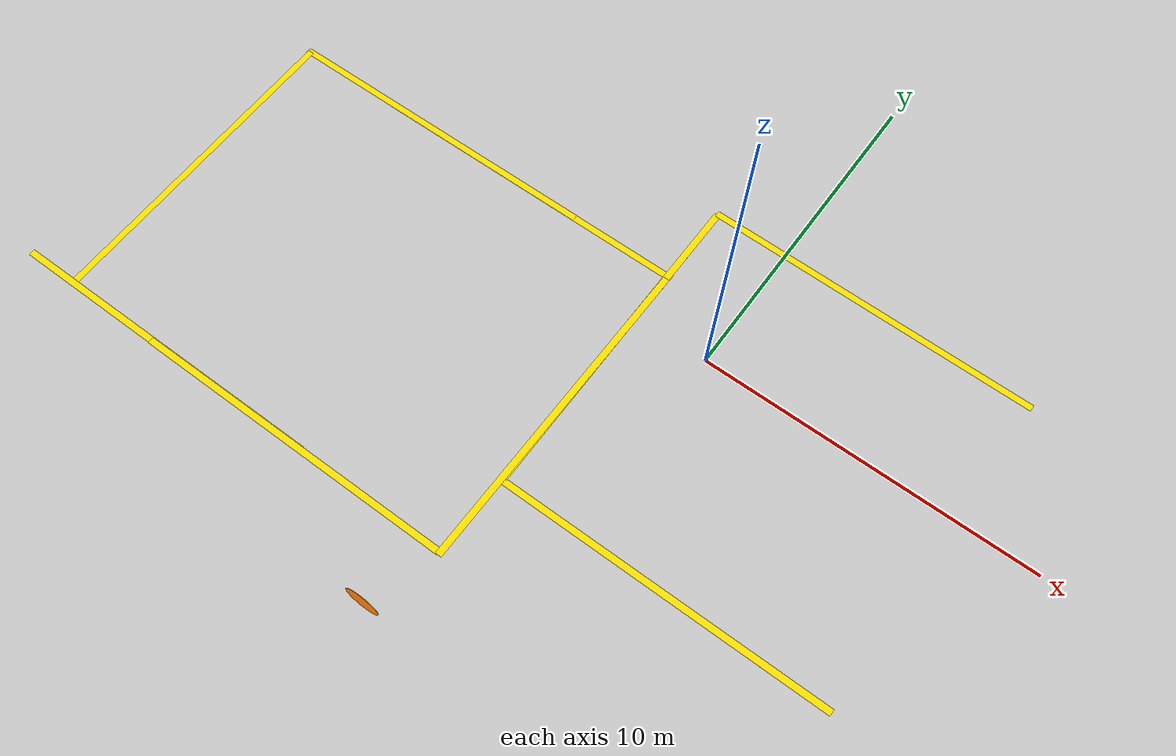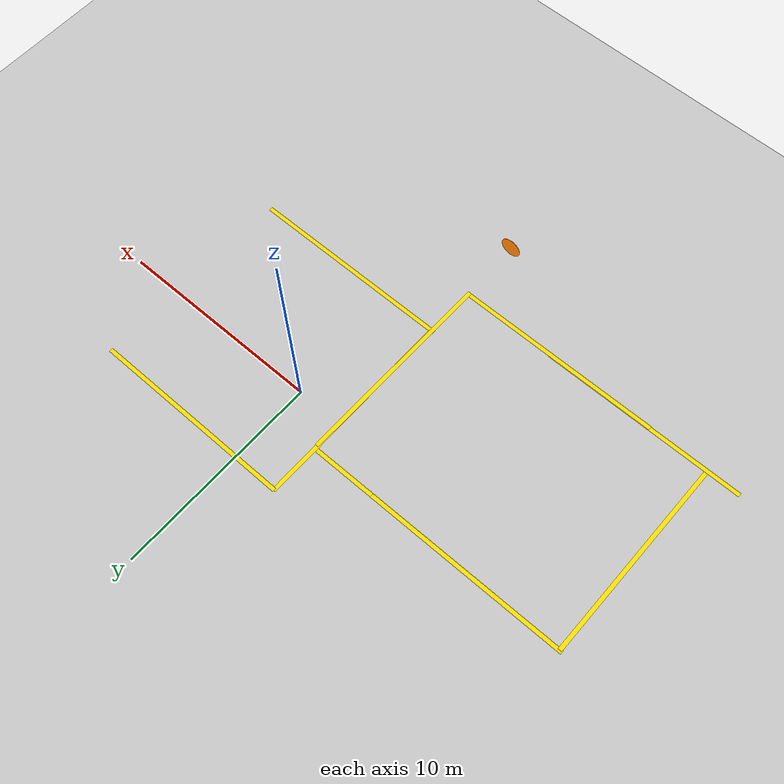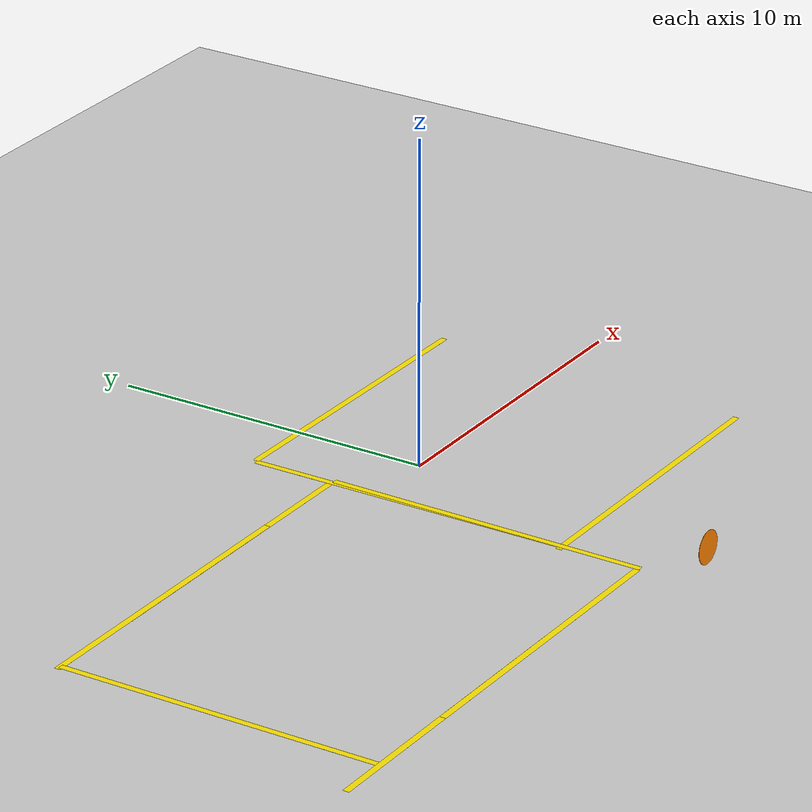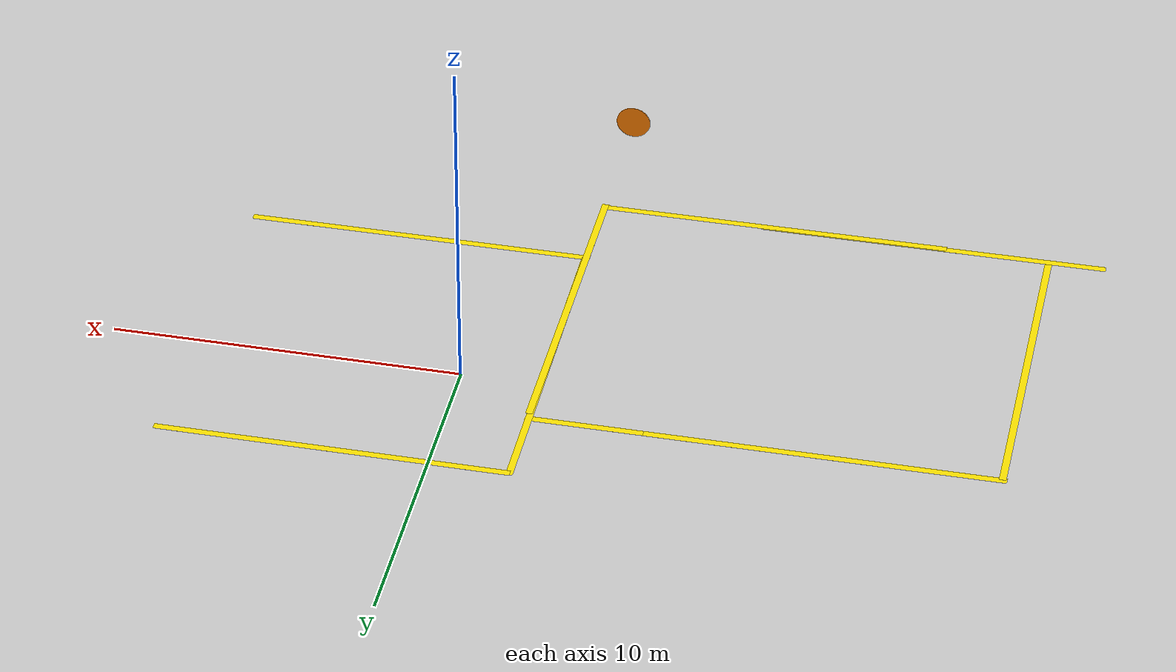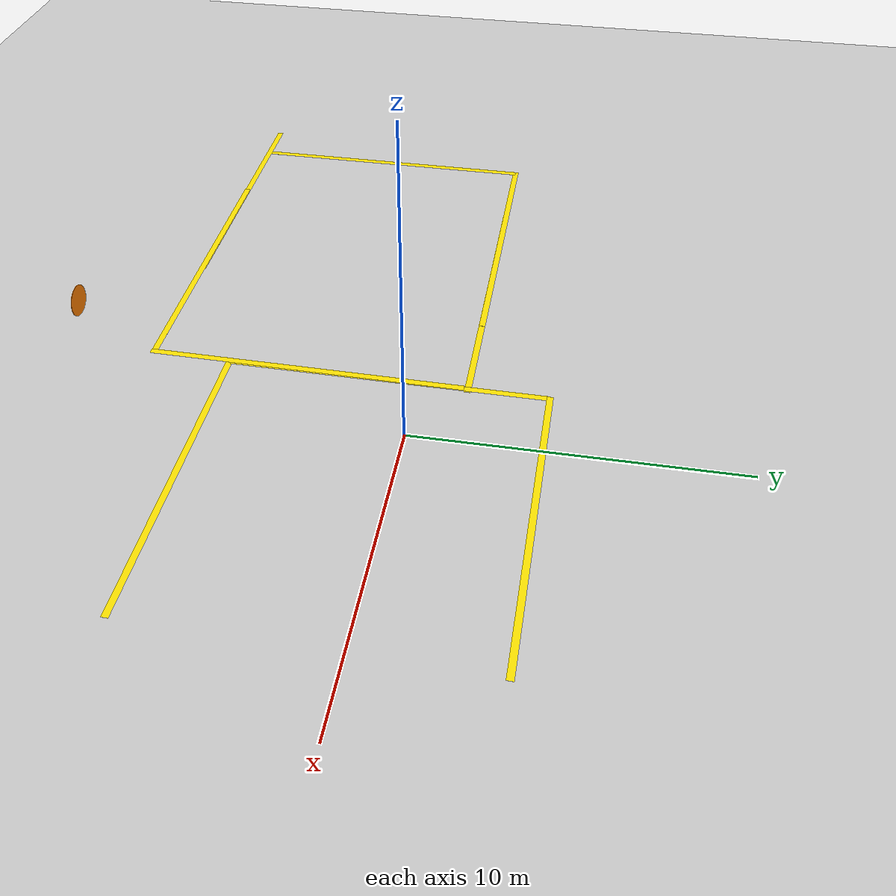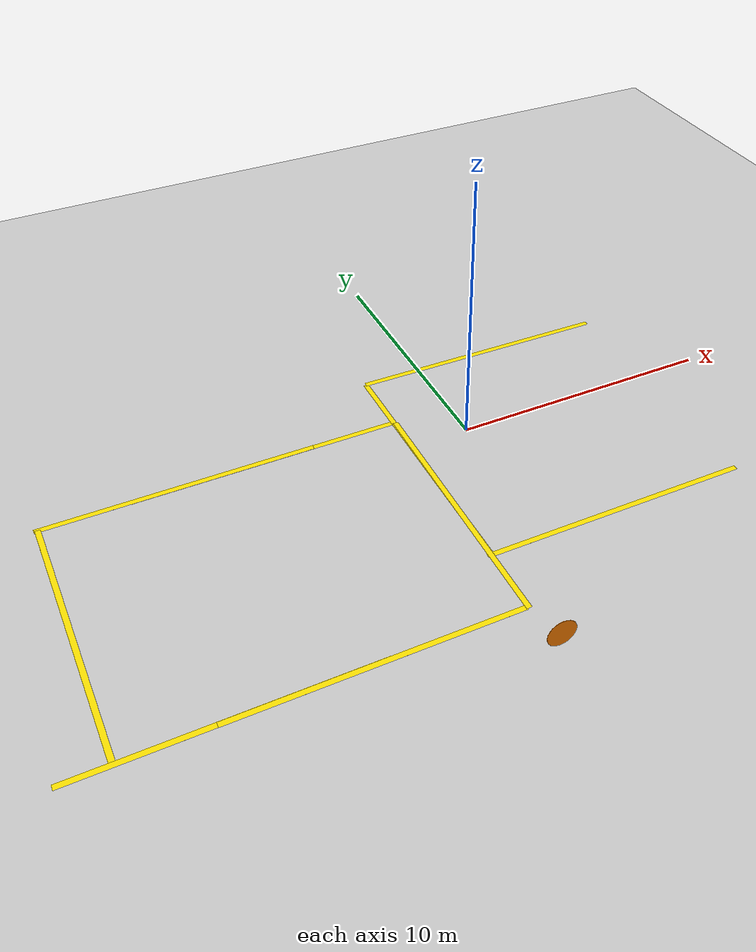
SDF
<sdf version="1.9">
 <world name="empty">
  <physics name="1ms" type="ignored">
   <max_step_size>0.001</max_step_size>
   <real_time_factor>1</real_time_factor>
   <real_time_update_rate>1000</real_time_update_rate>
  </physics>
  <plugin name="gz::sim::systems::Physics" filename="ignition-gazebo-physics-system"/>
  <plugin name="gz::sim::systems::UserCommands" filename="ignition-gazebo-user-commands-system"/>
  <plugin name="gz::sim::systems::SceneBroadcaster" filename="ignition-gazebo-scene-broadcaster-system"/>
  <plugin name="gz::sim::systems::Contact" filename="ignition-gazebo-contact-system"/>
  <gravity>0 0 -9.8</gravity>
  <magnetic_field>6e-06 2.3e-05 -4.2e-05</magnetic_field>
  <atmosphere type="adiabatic"/>
  <scene><ambient>0.4 0.4 0.4 1</ambient><background>0.7 0.7 0.7 1</background><shadows>true</shadows></scene>
  <model name="ground_plane">
   <static>true</static>
   <link name="link">
    <collision name="collision">
     <geometry><plane><normal>0 0 1</normal><size>100 100</size></plane></geometry>
    </collision>
    <visual name="visual">
     <geometry><plane><normal>0 0 1</normal><size>100 100</size></plane></geometry>
     <material>
      <ambient>0.8 0.8 0.8 1</ambient>
      <diffuse>0.8 0.8 0.8 1</diffuse>
      <specular>0.8 0.8 0.8 1</specular>
     </material>
    </visual>
    <inertial>
     <mass>1</mass>
     <inertia><ixx>1</ixx><ixy>0</ixy><ixz>0</ixz><iyy>1</iyy><iyz>0</iyz><izz>1</izz></inertia>
    </inertial>
   </link>
  </model>
  <model name="cylinder">
   <pose>-2.71414 -10.86 1.5 1.57 -0 0</pose>
   <link name="cylinder_link">
    <inertial>
     <inertia>
      <ixx>0.014579999999999999</ixx>
      <ixy>0</ixy>
      <ixz>0</ixz>
      <iyy>0.014579999999999999</iyy>
      <iyz>0</iyz>
      <izz>0.012500000000000001</izz>
     </inertia>
     <mass>10</mass>
    </inertial>
    <collision name="cylinder_collision">
     <geometry><cylinder><radius>0.5</radius><length>0.01</length></cylinder></geometry>
    </collision>
    <visual name="cylinder_visual">
     <geometry><cylinder><radius>0.5</radius><length>0.01</length></cylinder></geometry>
     <material><ambient>0.2 0.1 0 1</ambient><diffuse>1 0.5 0 1</diffuse><specular>1 1 1 1</specular></material>
    </visual>
   </link>
   <static>true</static>
  </model>
  <model name="line">
   <link name="link">
    <visual name="visual">
     <geometry><mesh><uri>file:///tecdron_ws/src/robot_gazebo/models/Line/line.dae</uri></mesh></geometry>
    </visual>
    <collision name="collision">
     <geometry><plane><normal>0 0 1</normal><size>0.1 0.1</size></plane></geometry>
    </collision>
    <inertial>
     <mass>1</mass>
     <inertia><ixx>1</ixx><ixy>0</ixy><ixz>0</ixz><iyy>1</iyy><iyz>0</iyz><izz>1</izz></inertia>
    </inertial>
   </link>
   <pose>2.70858 3.9935 0.050472 -0.00321 0.005039 -0.006178</pose>
   <static>true</static>
  </model>
  <model name="line_1">
   <link name="link">
    <visual name="visual">
     <geometry><mesh><uri>file:///tecdron_ws/src/robot_gazebo/models/Line/line.dae</uri></mesh></geometry>
    </visual>
    <collision name="collision">
     <geometry><plane><normal>0 0 1</normal><size>0.1 0.1</size></plane></geometry>
    </collision>
    <inertial>
     <mass>1</mass>
     <inertia><ixx>1</ixx><ixy>0</ixy><ixz>0</ixz><iyy>1</iyy><iyz>0</iyz><izz>1</izz></inertia>
    </inertial>
   </link>
   <pose>-2.27891 -0.959668 0.040963 -1e-06 -0.003195 -1.57361</pose>
   <static>true</static>
  </model>
  <model name="line_0">
   <link name="link">
    <visual name="visual">
     <geometry><mesh><uri>file:///tecdron_ws/src/robot_gazebo/models/Line/line.dae</uri></mesh></geometry>
    </visual>
    <collision name="collision">
     <geometry><plane><normal>0 0 1</normal><size>0.1 0.1</size></plane></geometry>
    </collision>
    <inertial>
     <mass>1</mass>
     <inertia><ixx>1</ixx><ixy>0</ixy><ixz>0</ixz><iyy>1</iyy><iyz>0</iyz><izz>1</izz></inertia>
    </inertial>
   </link>
   <pose>2.59019 -6.01506 0.010064 0.000302 0.000493 2e-05</pose>
   <static>true</static>
  </model>
  <model name="line_2">
   <link name="link">
    <visual name="visual">
     <geometry><mesh><uri>file:///tecdron_ws/src/robot_gazebo/models/Line/line.dae</uri></mesh></geometry>
    </visual>
    <collision name="collision">
     <geometry><mesh><uri>file:///tecdron_ws/src/robot_gazebo/models/Line/line.dae</uri></mesh></geometry>
    </collision>
    <inertial>
     <mass>1</mass>
     <inertia><ixx>1</ixx><ixy>0</ixy><ixz>0</ixz><iyy>1</iyy><iyz>0</iyz><izz>1</izz></inertia>
    </inertial>
   </link>
   <pose>-2.29876 -3.58658 0.085358 1e-05 0.000214 1.56015</pose>
   <static>false</static>
  </model>
  <model name="line_3">
   <link name="link">
    <visual name="visual">
     <geometry><mesh><uri>file:///tecdron_ws/src/robot_gazebo/models/Line/line.dae</uri></mesh></geometry>
    </visual>
    <collision name="collision">
     <geometry><mesh><uri>file:///tecdron_ws/src/robot_gazebo/models/Line/line.dae</uri></mesh></geometry>
    </collision>
    <inertial>
     <mass>1</mass>
     <inertia><ixx>1</ixx><ixy>0</ixy><ixz>0</ixz><iyy>1</iyy><iyz>0</iyz><izz>1</izz></inertia>
    </inertial>
   </link>
   <pose>-7.38553 -8.49808 0.048322 0 0 0</pose>
   <static>false</static>
  </model>
  <model name="line_4">
   <link name="link">
    <visual name="visual">
     <geometry><mesh><uri>file:///tecdron_ws/src/robot_gazebo/models/Line/line.dae</uri></mesh></geometry>
    </visual>
    <collision name="collision">
     <geometry><mesh><uri>file:///tecdron_ws/src/robot_gazebo/models/Line/line.dae</uri></mesh></geometry>
    </collision>
    <inertial>
     <mass>1</mass>
     <inertia><ixx>1</ixx><ixy>0</ixy><ixz>0</ixz><iyy>1</iyy><iyz>0</iyz><izz>1</izz></inertia>
    </inertial>
   </link>
   <pose>-15.3438 -3.47195 0.030573 0 -0 1.56977</pose>
   <static>false</static>
  </model>
  <model name="line_5">
   <link name="link">
    <visual name="visual">
     <geometry><mesh><uri>file:///tecdron_ws/src/robot_gazebo/models/Line/line.dae</uri></mesh></geometry>
    </visual>
    <collision name="collision">
     <geometry><mesh><uri>file:///tecdron_ws/src/robot_gazebo/models/Line/line.dae</uri></mesh></geometry>
    </collision>
    <inertial>
     <mass>1</mass>
     <inertia><ixx>1</ixx><ixy>0</ixy><ixz>0</ixz><iyy>1</iyy><iyz>0</iyz><izz>1</izz></inertia>
    </inertial>
   </link>
   <pose>-11.9876 -8.47999 0.033239 0 0 0</pose>
   <static>false</static>
  </model>
  <model name="line_6">
   <link name="link">
    <visual name="visual">
     <geometry><mesh><uri>file:///tecdron_ws/src/robot_gazebo/models/Line/line.dae</uri></mesh></geometry>
    </visual>
    <collision name="collision">
     <geometry><mesh><uri>file:///tecdron_ws/src/robot_gazebo/models/Line/line.dae</uri></mesh></geometry>
    </collision>
    <inertial>
     <mass>1</mass>
     <inertia><ixx>1</ixx><ixy>0</ixy><ixz>0</ixz><iyy>1</iyy><iyz>0</iyz><izz>1</izz></inertia>
    </inertial>
   </link>
   <pose>-10.4649 1.53273 0.00865 -0 -0 -0</pose>
   <static>false</static>
  </model>
  <model name="line_7">
   <link name="link">
    <visual name="visual">
     <geometry><mesh><uri>file:///tecdron_ws/src/robot_gazebo/models/Line/line.dae</uri></mesh></geometry>
    </visual>
    <collision name="collision">
     <geometry><mesh><uri>file:///tecdron_ws/src/robot_gazebo/models/Line/line.dae</uri></mesh></geometry>
    </collision>
    <inertial>
     <mass>1</mass>
     <inertia><ixx>1</ixx><ixy>0</ixy><ixz>0</ixz><iyy>1</iyy><iyz>0</iyz><izz>1</izz></inertia>
    </inertial>
   </link>
   <pose>-7.15815 1.52832 0.004429 0 -0 -0</pose>
   <static>false</static>
  </model>
  <light name="sun" type="directional">
   <pose>0 0 10 0 -0 0</pose>
   <intensity>1</intensity>
   <direction>-0.5 0.1 -0.9</direction>
   <diffuse>0.8 0.8 0.8 1</diffuse>
   <specular>0.2 0.2 0.2 1</specular>
   <attenuation>
    <range>1000</range>
    <linear>0.01</linear>
    <constant>0.90000000000000002</constant>
    <quadratic>0.001</quadratic>
   </attenuation>
   <spot><inner_angle>0</inner_angle><outer_angle>0</outer_angle><falloff>0</falloff></spot>
  </light>
 </world>
</sdf>
